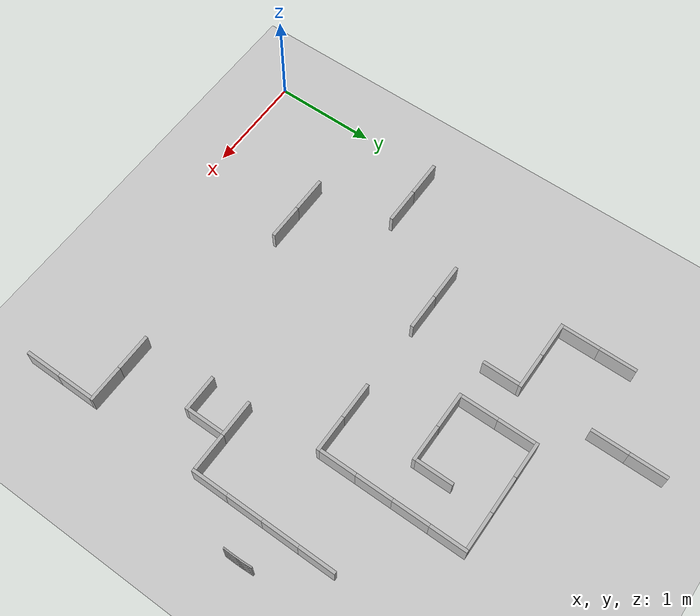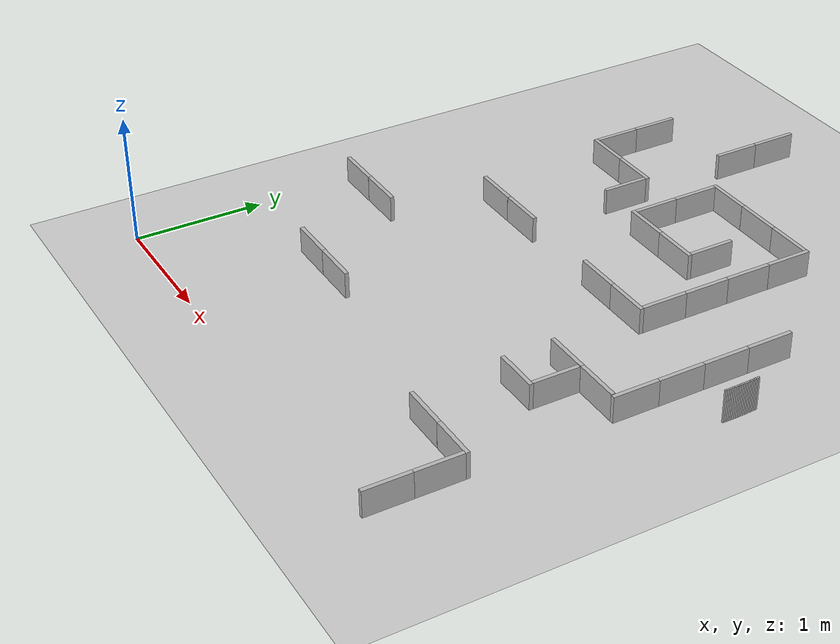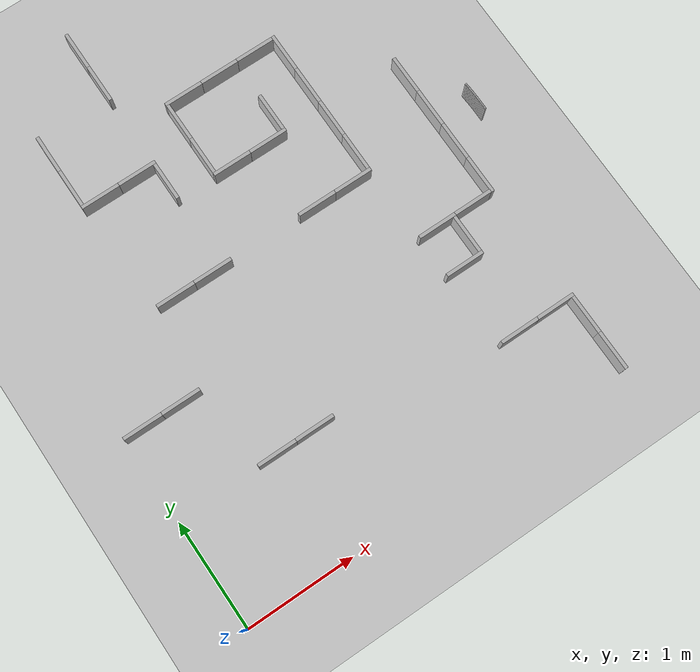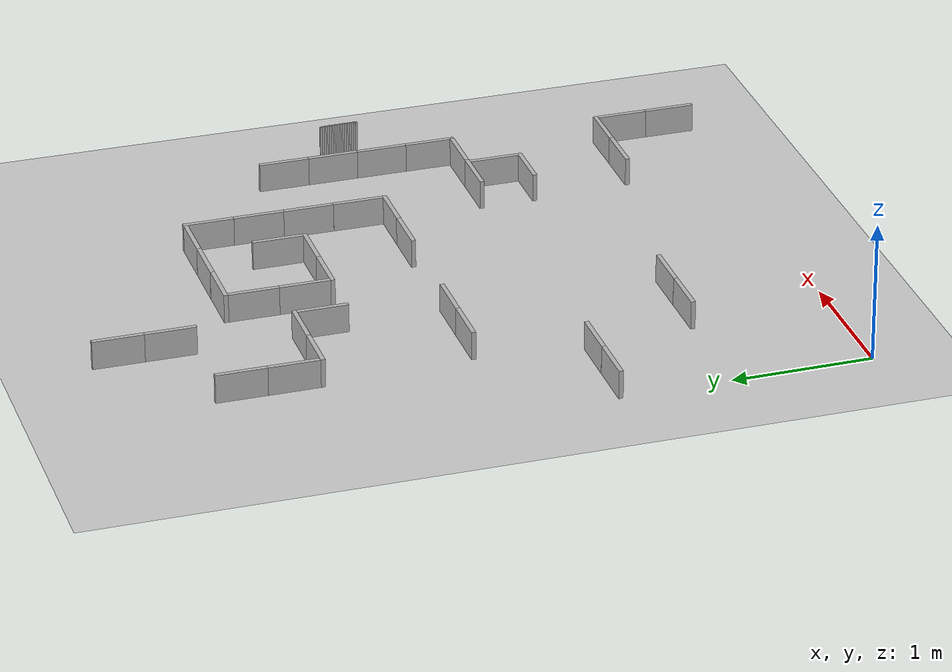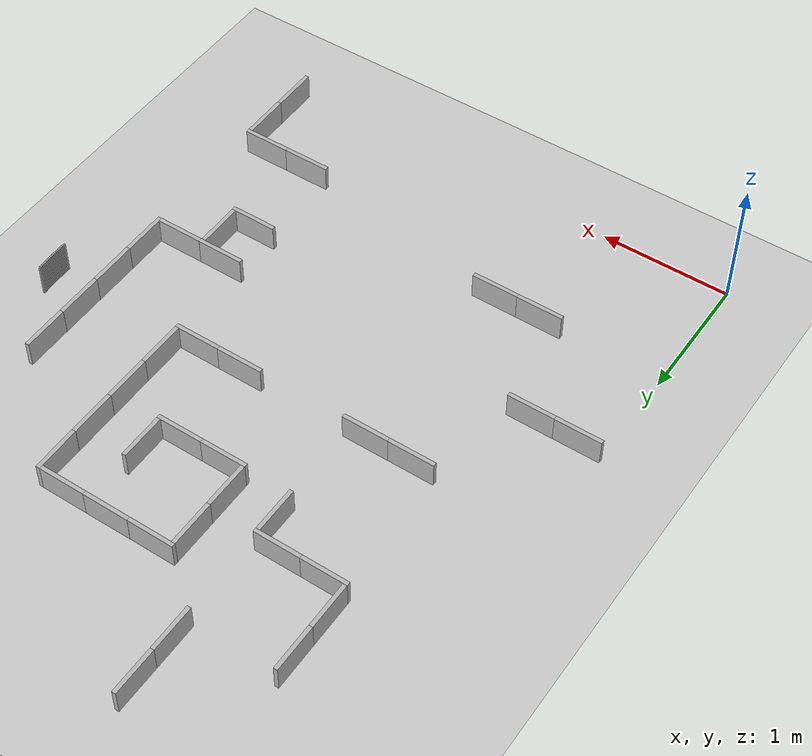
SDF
<sdf version="1.6">
 <world name="base">
  <include><uri>model://sun</uri></include>
  <include><uri>model://ground_plane</uri></include>
  <model name="k404">
   <link name="277_link">
    <collision name="collision_277">
     <pose>3.9927165269257694 2.690694300887916 0 0 -0 0</pose>
     <geometry><box><size>0.015 0.015 0.50</size></box></geometry>
    </collision>
    <visual name="visual_277">
     <pose>3.9927165269257694 2.690694300887916 0 0 -0 0</pose>
     <geometry><box><size>0.015 0.015 0.50</size></box></geometry>
    </visual>
   </link>
   <link name="278_link">
    <collision name="collision_278">
     <pose>3.993737466510136 2.6768430041692572 0 0 -0 0</pose>
     <geometry><box><size>0.015 0.015 0.50</size></box></geometry>
    </collision>
    <visual name="visual_278">
     <pose>3.993737466510136 2.6768430041692572 0 0 -0 0</pose>
     <geometry><box><size>0.015 0.015 0.50</size></box></geometry>
    </visual>
   </link>
   <link name="279_link">
    <collision name="collision_279">
     <pose>3.9946814390867074 2.662986249347224 0 0 -0 0</pose>
     <geometry><box><size>0.015 0.015 0.50</size></box></geometry>
    </collision>
    <visual name="visual_279">
     <pose>3.9946814390867074 2.662986249347224 0 0 -0 0</pose>
     <geometry><box><size>0.015 0.015 0.50</size></box></geometry>
    </visual>
   </link>
   <link name="280_link">
    <collision name="collision_280">
     <pose>3.9955484155206014 2.6491244640983345 0 0 -0 0</pose>
     <geometry><box><size>0.015 0.015 0.50</size></box></geometry>
    </collision>
    <visual name="visual_280">
     <pose>3.9955484155206014 2.6491244640983345 0 0 -0 0</pose>
     <geometry><box><size>0.015 0.015 0.50</size></box></geometry>
    </visual>
   </link>
   <link name="281_link">
    <collision name="collision_281">
     <pose>3.9963383690533556 2.6352580762543663 0 0 -0 0</pose>
     <geometry><box><size>0.015 0.015 0.50</size></box></geometry>
    </collision>
    <visual name="visual_281">
     <pose>3.9963383690533556 2.6352580762543663 0 0 -0 0</pose>
     <geometry><box><size>0.015 0.015 0.50</size></box></geometry>
    </visual>
   </link>
   <link name="282_link">
    <collision name="collision_282">
     <pose>3.997051275303751 2.621387513789152 0 0 -0 0</pose>
     <geometry><box><size>0.015 0.015 0.50</size></box></geometry>
    </collision>
    <visual name="visual_282">
     <pose>3.997051275303751 2.621387513789152 0 0 -0 0</pose>
     <geometry><box><size>0.015 0.015 0.50</size></box></geometry>
    </visual>
   </link>
   <link name="283_link">
    <collision name="collision_283">
     <pose>3.997687112268564 2.607513204805371 0 0 -0 0</pose>
     <geometry><box><size>0.015 0.015 0.50</size></box></geometry>
    </collision>
    <visual name="visual_283">
     <pose>3.997687112268564 2.607513204805371 0 0 -0 0</pose>
     <geometry><box><size>0.015 0.015 0.50</size></box></geometry>
    </visual>
   </link>
   <link name="284_link">
    <collision name="collision_284">
     <pose>3.998245860323248 2.5936355775213333 0 0 -0 0</pose>
     <geometry><box><size>0.015 0.015 0.50</size></box></geometry>
    </collision>
    <visual name="visual_284">
     <pose>3.998245860323248 2.5936355775213333 0 0 -0 0</pose>
     <geometry><box><size>0.015 0.015 0.50</size></box></geometry>
    </visual>
   </link>
   <link name="285_link">
    <collision name="collision_285">
     <pose>3.998727502222537 2.579755060257769 0 0 -0 0</pose>
     <geometry><box><size>0.015 0.015 0.50</size></box></geometry>
    </collision>
    <visual name="visual_285">
     <pose>3.998727502222537 2.579755060257769 0 0 -0 0</pose>
     <geometry><box><size>0.015 0.015 0.50</size></box></geometry>
    </visual>
   </link>
   <link name="286_link">
    <collision name="collision_286">
     <pose>3.999132023100979 2.565872081424602 0 0 -0 0</pose>
     <geometry><box><size>0.015 0.015 0.50</size></box></geometry>
    </collision>
    <visual name="visual_286">
     <pose>3.999132023100979 2.565872081424602 0 0 -0 0</pose>
     <geometry><box><size>0.015 0.015 0.50</size></box></geometry>
    </visual>
   </link>
   <link name="287_link">
    <collision name="collision_287">
     <pose>3.9994594104733925 2.551987069507731 0 0 -0 0</pose>
     <geometry><box><size>0.015 0.015 0.50</size></box></geometry>
    </collision>
    <visual name="visual_287">
     <pose>3.9994594104733925 2.551987069507731 0 0 -0 0</pose>
     <geometry><box><size>0.015 0.015 0.50</size></box></geometry>
    </visual>
   </link>
   <link name="288_link">
    <collision name="collision_288">
     <pose>3.999709654235256 2.538100453055805 0 0 -0 0</pose>
     <geometry><box><size>0.015 0.015 0.50</size></box></geometry>
    </collision>
    <visual name="visual_288">
     <pose>3.999709654235256 2.538100453055805 0 0 -0 0</pose>
     <geometry><box><size>0.015 0.015 0.50</size></box></geometry>
    </visual>
   </link>
   <link name="289_link">
    <collision name="collision_289">
     <pose>3.9998827466630162 2.524212660666994 0 0 -0 0</pose>
     <geometry><box><size>0.015 0.015 0.50</size></box></geometry>
    </collision>
    <visual name="visual_289">
     <pose>3.9998827466630162 2.524212660666994 0 0 -0 0</pose>
     <geometry><box><size>0.015 0.015 0.50</size></box></geometry>
    </visual>
   </link>
   <link name="290_link">
    <collision name="collision_290">
     <pose>3.9999786824143277 2.510324120975764 0 0 -0 0</pose>
     <geometry><box><size>0.015 0.015 0.50</size></box></geometry>
    </collision>
    <visual name="visual_290">
     <pose>3.9999786824143277 2.510324120975764 0 0 -0 0</pose>
     <geometry><box><size>0.015 0.015 0.50</size></box></geometry>
    </visual>
   </link>
   <link name="291_link">
    <collision name="collision_291">
     <pose>3.9999974585282185 2.4964352626396438 0 0 -0 0</pose>
     <geometry><box><size>0.015 0.015 0.50</size></box></geometry>
    </collision>
    <visual name="visual_291">
     <pose>3.9999974585282185 2.4964352626396438 0 0 -0 0</pose>
     <geometry><box><size>0.015 0.015 0.50</size></box></geometry>
    </visual>
   </link>
   <link name="292_link">
    <collision name="collision_292">
     <pose>3.99993907442518 2.482546514325999 0 0 -0 0</pose>
     <geometry><box><size>0.015 0.015 0.50</size></box></geometry>
    </collision>
    <visual name="visual_292">
     <pose>3.99993907442518 2.482546514325999 0 0 -0 0</pose>
     <geometry><box><size>0.015 0.015 0.50</size></box></geometry>
    </visual>
   </link>
   <link name="293_link">
    <collision name="collision_293">
     <pose>3.999803531907187 2.468658304698798 0 0 -0 0</pose>
     <geometry><box><size>0.015 0.015 0.50</size></box></geometry>
    </collision>
    <visual name="visual_293">
     <pose>3.999803531907187 2.468658304698798 0 0 -0 0</pose>
     <geometry><box><size>0.015 0.015 0.50</size></box></geometry>
    </visual>
   </link>
   <link name="294_link">
    <collision name="collision_294">
     <pose>3.9995908351576386 2.454771062405384 0 0 -0 0</pose>
     <geometry><box><size>0.015 0.015 0.50</size></box></geometry>
    </collision>
    <visual name="visual_294">
     <pose>3.9995908351576386 2.454771062405384 0 0 -0 0</pose>
     <geometry><box><size>0.015 0.015 0.50</size></box></geometry>
    </visual>
   </link>
   <link name="295_link">
    <collision name="collision_295">
     <pose>3.9993009907412334 2.4408852160632426 0 0 -0 0</pose>
     <geometry><box><size>0.015 0.015 0.50</size></box></geometry>
    </collision>
    <visual name="visual_295">
     <pose>3.9993009907412334 2.4408852160632426 0 0 -0 0</pose>
     <geometry><box><size>0.015 0.015 0.50</size></box></geometry>
    </visual>
   </link>
   <link name="296_link">
    <collision name="collision_296">
     <pose>3.9989340076037627 2.427001194246778 0 0 -0 0</pose>
     <geometry><box><size>0.015 0.015 0.50</size></box></geometry>
    </collision>
    <visual name="visual_296">
     <pose>3.9989340076037627 2.427001194246778 0 0 -0 0</pose>
     <geometry><box><size>0.015 0.015 0.50</size></box></geometry>
    </visual>
   </link>
   <static>true</static>
  </model>
  <model name="Placa01">
   <pose>2.73045 2.53875 0 0 -0 1.57</pose>
   <static>1</static>
   <link name="link">
    <collision name="collision"><geometry><box><size>0.031694 0.360886 0.40006</size></box></geometry></collision>
    <visual name="visual"><geometry><box><size>0.031694 0.360886 0.40006</size></box></geometry></visual>
   </link>
  </model>
  <model name="Placa02">
   <pose>2.37015 2.53943 0 0 -0 1.57</pose>
   <static>1</static>
   <link name="link">
    <collision name="collision"><geometry><box><size>0.031694 0.360886 0.40006</size></box></geometry></collision>
    <visual name="visual"><geometry><box><size>0.031694 0.360886 0.40006</size></box></geometry></visual>
   </link>
  </model>
  <model name="Placa03">
   <pose>2.33874 3.98 0 0 -0 1.57</pose>
   <static>1</static>
   <link name="link">
    <collision name="collision"><geometry><box><size>0.031694 0.360886 0.40006</size></box></geometry></collision>
    <visual name="visual"><geometry><box><size>0.031694 0.360886 0.40006</size></box></geometry></visual>
   </link>
  </model>
  <model name="Placa04">
   <pose>1.30789 1 0 0 -0 1.57</pose>
   <static>1</static>
   <link name="link">
    <collision name="collision"><geometry><box><size>0.031694 0.360886 0.40006</size></box></geometry></collision>
    <visual name="visual"><geometry><box><size>0.031694 0.360886 0.40006</size></box></geometry></visual>
   </link>
  </model>
  <model name="Placa05">
   <pose>0.948425 1 0 0 -0 1.57</pose>
   <static>1</static>
   <link name="link">
    <collision name="collision"><geometry><box><size>0.031694 0.360886 0.40006</size></box></geometry></collision>
    <visual name="visual"><geometry><box><size>0.031694 0.360886 0.40006</size></box></geometry></visual>
   </link>
  </model>
  <model name="Placa06">
   <pose>0.18 1.775 0 0 -0 1.57</pose>
   <static>1</static>
   <link name="link">
    <collision name="collision"><geometry><box><size>0.031694 0.360886 0.40006</size></box></geometry></collision>
    <visual name="visual"><geometry><box><size>0.031694 0.360886 0.40006</size></box></geometry></visual>
   </link>
  </model>
  <model name="Placa07">
   <pose>0.539939 1.775 0 0 -0 1.57</pose>
   <static>1</static>
   <link name="link">
    <collision name="collision"><geometry><box><size>0.031694 0.360886 0.40006</size></box></geometry></collision>
    <visual name="visual"><geometry><box><size>0.031694 0.360886 0.40006</size></box></geometry></visual>
   </link>
  </model>
  <model name="Placa08">
   <pose>0.915 3.6 0 0 -0 1.57</pose>
   <static>1</static>
   <link name="link">
    <collision name="collision"><geometry><box><size>0.031694 0.360886 0.40006</size></box></geometry></collision>
    <visual name="visual"><geometry><box><size>0.031694 0.360886 0.40006</size></box></geometry></visual>
   </link>
  </model>
  <model name="Placa09">
   <pose>1.27534 3.6 0 0 -0 1.57</pose>
   <static>1</static>
   <link name="link">
    <collision name="collision"><geometry><box><size>0.031694 0.360886 0.40006</size></box></geometry></collision>
    <visual name="visual"><geometry><box><size>0.031694 0.360886 0.40006</size></box></geometry></visual>
   </link>
  </model>
  <model name="Placa10">
   <pose>2.69929 3.98001 0 0 -0 1.57</pose>
   <static>1</static>
   <link name="link">
    <collision name="collision"><geometry><box><size>0.031694 0.360886 0.40006</size></box></geometry></collision>
    <visual name="visual"><geometry><box><size>0.031694 0.360886 0.40006</size></box></geometry></visual>
   </link>
  </model>
  <model name="Placa11">
   <pose>3.638 3.065671 0 0 -0 0</pose>
   <static>1</static>
   <link name="link">
    <collision name="collision"><geometry><box><size>0.031694 0.360886 0.40006</size></box></geometry></collision>
    <visual name="visual"><geometry><box><size>0.031694 0.360886 0.40006</size></box></geometry></visual>
   </link>
  </model>
  <model name="Placa12">
   <pose>3.638 2.705148 0 0 -0 0</pose>
   <static>1</static>
   <link name="link">
    <collision name="collision"><geometry><box><size>0.031694 0.360886 0.40006</size></box></geometry></collision>
    <visual name="visual"><geometry><box><size>0.031694 0.360886 0.40006</size></box></geometry></visual>
   </link>
  </model>
  <model name="Placa13">
   <pose>2.33861 3.22858 0 0 -0 1.57</pose>
   <static>1</static>
   <link name="link">
    <collision name="collision"><geometry><box><size>0.031694 0.360886 0.40006</size></box></geometry></collision>
    <visual name="visual"><geometry><box><size>0.031694 0.360886 0.40006</size></box></geometry></visual>
   </link>
  </model>
  <model name="Placa14">
   <pose>3.247722 1.625856 0 0 -0 0</pose>
   <static>1</static>
   <link name="link">
    <collision name="collision"><geometry><box><size>0.031694 0.360886 0.40006</size></box></geometry></collision>
    <visual name="visual"><geometry><box><size>0.031694 0.360886 0.40006</size></box></geometry></visual>
   </link>
  </model>
  <model name="Placa15">
   <pose>1.44 4.45928 0 0 -0 0</pose>
   <static>1</static>
   <link name="link">
    <collision name="collision"><geometry><box><size>0.031694 0.360886 0.40006</size></box></geometry></collision>
    <visual name="visual"><geometry><box><size>0.031694 0.360886 0.40006</size></box></geometry></visual>
   </link>
  </model>
  <model name="Placa16">
   <pose>2.895 2.73465 0 0 -0 0</pose>
   <static>1</static>
   <link name="link">
    <collision name="collision"><geometry><box><size>0.031694 0.360886 0.40006</size></box></geometry></collision>
    <visual name="visual"><geometry><box><size>0.031694 0.360886 0.40006</size></box></geometry></visual>
   </link>
  </model>
  <model name="Placa17">
   <pose>2.895 3.09571 0 0 -0 0</pose>
   <static>1</static>
   <link name="link">
    <collision name="collision"><geometry><box><size>0.031694 0.360886 0.40006</size></box></geometry></collision>
    <visual name="visual"><geometry><box><size>0.031694 0.360886 0.40006</size></box></geometry></visual>
   </link>
  </model>
  <model name="Placa18">
   <pose>1.8136 3.785 0 0 0 0</pose>
   <static>1</static>
   <link name="link">
    <collision name="collision"><geometry><box><size>0.031694 0.360886 0.40006</size></box></geometry></collision>
    <visual name="visual"><geometry><box><size>0.031694 0.360886 0.40006</size></box></geometry></visual>
   </link>
  </model>
  <model name="Placa19">
   <pose>1.8136 3.42434 0 0 0 0</pose>
   <static>1</static>
   <link name="link">
    <collision name="collision"><geometry><box><size>0.031694 0.360886 0.40006</size></box></geometry></collision>
    <visual name="visual"><geometry><box><size>0.031694 0.360886 0.40006</size></box></geometry></visual>
   </link>
  </model>
  <model name="Placa20">
   <pose>2.50325 3.42462 0 0 -0 0</pose>
   <static>1</static>
   <link name="link">
    <collision name="collision"><geometry><box><size>0.031694 0.360886 0.40006</size></box></geometry></collision>
    <visual name="visual"><geometry><box><size>0.031694 0.360886 0.40006</size></box></geometry></visual>
   </link>
  </model>
  <model name="Placa21">
   <pose>3.443280 1.82086 0.005089 0 -0 1.57</pose>
   <static>1</static>
   <link name="link">
    <collision name="collision"><geometry><box><size>0.031694 0.360886 0.40006</size></box></geometry></collision>
    <visual name="visual"><geometry><box><size>0.031694 0.360886 0.40006</size></box></geometry></visual>
   </link>
  </model>
  <model name="Placa22">
   <pose>0.750271 3.79641 0 0 -0 0</pose>
   <static>1</static>
   <link name="link">
    <collision name="collision"><geometry><box><size>0.031694 0.360886 0.40006</size></box></geometry></collision>
    <visual name="visual"><geometry><box><size>0.031694 0.360886 0.40006</size></box></geometry></visual>
   </link>
  </model>
  <model name="Placa23">
   <pose>2.89541 3.81513 0 0 -0 0</pose>
   <static>1</static>
   <link name="link">
    <collision name="collision"><geometry><box><size>0.031694 0.360886 0.40006</size></box></geometry></collision>
    <visual name="visual"><geometry><box><size>0.031694 0.360886 0.40006</size></box></geometry></visual>
   </link>
  </model>
  <model name="Placa24">
   <pose>1.44 4.82 0 0 -0 0</pose>
   <static>1</static>
   <link name="link">
    <collision name="collision"><geometry><box><size>0.031694 0.360886 0.40006</size></box></geometry></collision>
    <visual name="visual"><geometry><box><size>0.031694 0.360886 0.40006</size></box></geometry></visual>
   </link>
  </model>
  <model name="Placa25">
   <pose>2.895 3.45457 0 0 -0 0</pose>
   <static>1</static>
   <link name="link">
    <collision name="collision"><geometry><box><size>0.031694 0.360886 0.40006</size></box></geometry></collision>
    <visual name="visual"><geometry><box><size>0.031694 0.360886 0.40006</size></box></geometry></visual>
   </link>
  </model>
  <model name="Placa26">
   <pose>0.750309 4.15611 0 0 -0 0</pose>
   <static>1</static>
   <link name="link">
    <collision name="collision"><geometry><box><size>0.031694 0.360886 0.40006</size></box></geometry></collision>
    <visual name="visual"><geometry><box><size>0.031694 0.360886 0.40006</size></box></geometry></visual>
   </link>
  </model>
  <model name="Placa27">
   <pose>1.44 3.40416 0 0 -0 0</pose>
   <static>1</static>
   <link name="link">
    <collision name="collision"><geometry><box><size>0.031694 0.360886 0.40006</size></box></geometry></collision>
    <visual name="visual"><geometry><box><size>0.031694 0.360886 0.40006</size></box></geometry></visual>
   </link>
  </model>
  <model name="Placa28">
   <pose>3.638 2.345 0 0 -0 0</pose>
   <static>1</static>
   <link name="link">
    <collision name="collision"><geometry><box><size>0.031694 0.360886 0.40006</size></box></geometry></collision>
    <visual name="visual"><geometry><box><size>0.031694 0.360886 0.40006</size></box></geometry></visual>
   </link>
  </model>
  <model name="Placa29">
   <pose>3.638 1.985 0 0 -0 0</pose>
   <static>1</static>
   <link name="link">
    <collision name="collision"><geometry><box><size>0.031694 0.360886 0.40006</size></box></geometry></collision>
    <visual name="visual"><geometry><box><size>0.031694 0.360886 0.40006</size></box></geometry></visual>
   </link>
  </model>
  <model name="Placa30">
   <pose>1.979043 3.229212 0 0 0 1.57</pose>
   <static>1</static>
   <link name="link">
    <collision name="collision"><geometry><box><size>0.031694 0.360886 0.40006</size></box></geometry></collision>
    <visual name="visual"><geometry><box><size>0.031694 0.360886 0.40006</size></box></geometry></visual>
   </link>
  </model>
  <model name="Placa31">
   <pose>3.12454 0.724 0 0 -0 1.57</pose>
   <static>1</static>
   <link name="link">
    <collision name="collision"><geometry><box><size>0.031694 0.360886 0.40006</size></box></geometry></collision>
    <visual name="visual"><geometry><box><size>0.031694 0.360886 0.40006</size></box></geometry></visual>
   </link>
  </model>
  <model name="Placa32">
   <pose>3.48525 0.724 0 0 -0 1.57</pose>
   <static>1</static>
   <link name="link">
    <collision name="collision"><geometry><box><size>0.031694 0.360886 0.40006</size></box></geometry></collision>
    <visual name="visual"><geometry><box><size>0.031694 0.360886 0.40006</size></box></geometry></visual>
   </link>
  </model>
  <model name="Placa33">
   <pose>3.65 0.529833 0 0 -0 0</pose>
   <static>1</static>
   <link name="link">
    <collision name="collision"><geometry><box><size>0.031694 0.360886 0.40006</size></box></geometry></collision>
    <visual name="visual"><geometry><box><size>0.031694 0.360886 0.40006</size></box></geometry></visual>
   </link>
  </model>
  <model name="Placa34">
   <pose>3.65 0.17 0 0 -0 0</pose>
   <static>1</static>
   <link name="link">
    <collision name="collision"><geometry><box><size>0.031694 0.360886 0.40006</size></box></geometry></collision>
    <visual name="visual"><geometry><box><size>0.031694 0.360886 0.40006</size></box></geometry></visual>
   </link>
  </model>
  <model name="Placa35">
   <pose>3.08322 1.43 0 0 -0 1.57</pose>
   <static>1</static>
   <link name="link">
    <collision name="collision"><geometry><box><size>0.031694 0.360886 0.40006</size></box></geometry></collision>
    <visual name="visual"><geometry><box><size>0.031694 0.360886 0.40006</size></box></geometry></visual>
   </link>
  </model>
  <model name="Placa36">
   <pose>1.978 3.979459 0 0 0 1.57</pose>
   <static>1</static>
   <link name="link">
    <collision name="collision"><geometry><box><size>0.031694 0.360886 0.40006</size></box></geometry></collision>
    <visual name="visual"><geometry><box><size>0.031694 0.360886 0.40006</size></box></geometry></visual>
   </link>
  </model>
  <model name="Placa37">
   <pose>3.08321 1.82086 0.005089 0 -0 1.57</pose>
   <static>1</static>
   <link name="link">
    <collision name="collision"><geometry><box><size>0.031694 0.360886 0.40006</size></box></geometry></collision>
    <visual name="visual"><geometry><box><size>0.031694 0.360886 0.40006</size></box></geometry></visual>
   </link>
  </model>
  <model name="Placa38">
   <pose>1.34 2.54 0 -0 0 1.57</pose>
   <static>1</static>
   <link name="link">
    <collision name="collision"><geometry><box><size>0.031694 0.360886 0.40006</size></box></geometry></collision>
    <visual name="visual"><geometry><box><size>0.031694 0.360886 0.40006</size></box></geometry></visual>
   </link>
  </model>
  <model name="Placa39">
   <pose>0.98 2.54 0 -0 0 1.57</pose>
   <static>1</static>
   <link name="link">
    <collision name="collision"><geometry><box><size>0.031694 0.360886 0.40006</size></box></geometry></collision>
    <visual name="visual"><geometry><box><size>0.031694 0.360886 0.40006</size></box></geometry></visual>
   </link>
  </model>
 </world>
</sdf>
